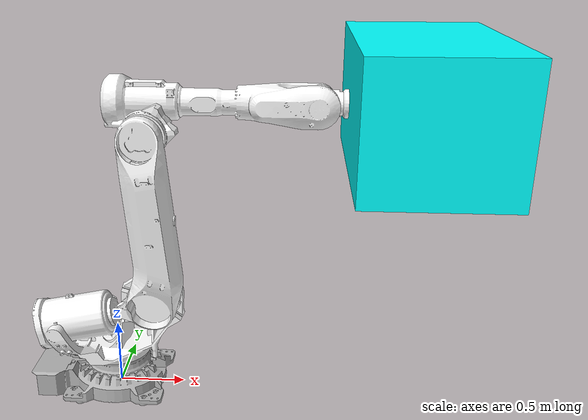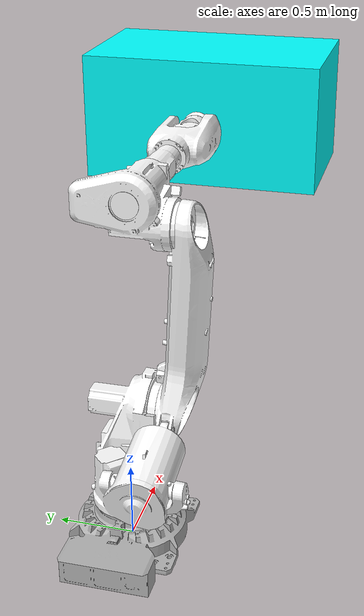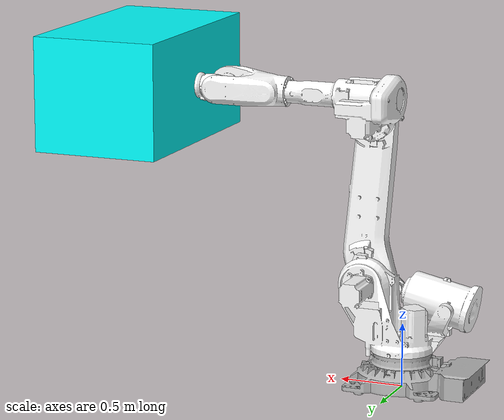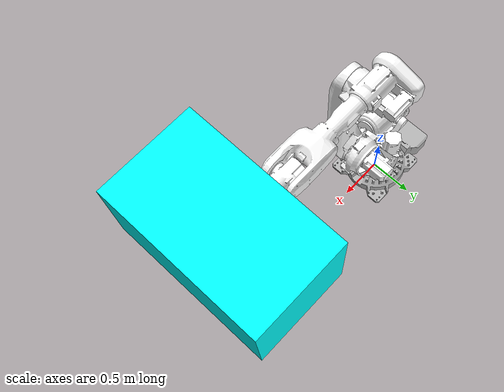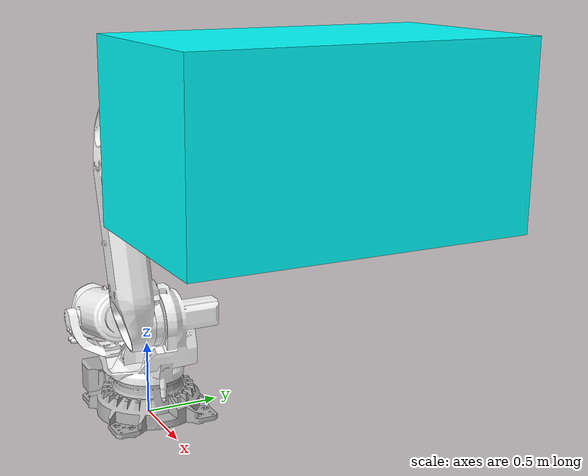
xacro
<robot xmlns:xacro="http://ros.org/wiki/xacro" name="abb_irb6700_205_280">
  <xacro:include filename="$(find abb_irb6700_205_280_support)/urdf/abb_irb6700_205_280_macro.xacro"/>
  <xacro:abb_irb6700_205_280 prefix=""/>

  <joint name="$joint_ee" type="fixed">
    <origin xyz="0.51 0 0" rpy="0 0 0"/>
    <parent link="link_6"/>
    <child link="gripper"/>
  </joint>

  <link name="gripper">
    <inertial>
      <origin xyz="0 0 0" rpy="0 0 0"/>
      <mass value="1"/>
      <inertia ixx="100"  ixy="0"  ixz="0" iyy="100" iyz="0" izz="100" />q
    </inertial>

    <visual>
      <origin xyz="0 0 0" rpy="0 0 0" />
      <geometry>
        <!--box size=".1 .1 .1" /-->
        <box size="1 1.7 .9" />
      </geometry>
      <material name="Cyan">
        <color rgba="0 1.0 1.0 1"/>
      </material>
    </visual>

    <collision>
      <origin xyz="0 0 0" rpy="0 0 0"/>
      <geometry>
        <box size="1 1.7 .9" />
      </geometry>
    </collision>
 </link>

   <joint name="$joint_deformation" type="fixed">
    <origin xyz="0.78 0.744 0" rpy="0 1.5707 0"/>
    <parent link="link_6"/>
    <child link="grasping"/>
  </joint>

   <link name="grasping"/>
</robot>

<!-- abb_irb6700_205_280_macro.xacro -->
<robot xmlns:xacro="http://ros.org/wiki/xacro">
<xacro:macro name="abb_irb6700_205_280" params="prefix">

<!-- material list -->
<material name="white">
  <color rgba="1 1 1 1"/>
</material>

<material name="grey">
  <color rgba=".7 .7 .7 1"/>
</material>

<material name="yellow">
  <color rgba=".9 .9 0 0.2"/>
</material>

<!--  link list  -->
<link name="${prefix}base_link">
  <visual>
    <origin xyz="0 0 0" rpy="0 0 0"/>
    <geometry>
      <mesh filename="package://abb_irb6700_205_280_support/meshes/irb6700_205_280/ManipulatorJoint0.stl" scale="0.001 0.001 0.001"/>
    </geometry>
    <material name="grey"/>
  </visual>
  <collision>
  <origin xyz="0 0 0" rpy="0 0 0"/>
  <geometry>
  <mesh filename="package://abb_irb6700_205_280_support/meshes/irb6700_205_280/ManipulatorJoint0.stl" scale="0.001 0.001 0.001"/>
  </geometry>
    <material name="grey"/>
  </collision>
</link>

<link name="${prefix}link_1">
  <visual>
  <origin xyz="0 0 -0.78" rpy="0 0 0"/>
  <geometry>
  <mesh filename="package://abb_irb6700_205_280_support/meshes/irb6700_205_280/ManipulatorJoint1.stl" scale="0.001 0.001 0.001"/>
  </geometry>
  <material name="white"/>
  </visual>
  <collision>
  <origin xyz="0 0 -0.78" rpy="0 0 0"/>
  <geometry>
  <mesh filename="package://abb_irb6700_205_280_support/meshes/irb6700_205_280/ManipulatorJoint1.stl" scale="0.001 0.001 0.001"/>
  </geometry>
    <material name="white"/>
  </collision>
</link>

<link name="${prefix}link_2">
  <visual>
  <origin xyz="-0.32 0 -0.78" rpy="0 0 0"/>
  <geometry>
  <mesh filename="package://abb_irb6700_205_280_support/meshes/irb6700_205_280/ManipulatorJoint2.stl" scale="0.001 0.001 0.001"/>
  </geometry>
    <material name="white"/>
  </visual>
  <collision>
  <origin xyz="-0.32 0 -0.78" rpy="0 0 0"/>
  <geometry>
  <mesh filename="package://abb_irb6700_205_280_support/meshes/irb6700_205_280/ManipulatorJoint2.stl" scale="0.001 0.001 0.001"/>
  </geometry>
    <material name="white"/>
  </collision>
</link>

<link name="${prefix}link_3">
  <visual>
  <origin xyz="-0.32 0 -2.06" rpy="0 0 0"/>
  <geometry>
  <mesh filename="package://abb_irb6700_205_280_support/meshes/irb6700_205_280/ManipulatorJoint3.stl" scale="0.001 0.001 0.001"/>
  </geometry>
    <material name="white"/>
  </visual>
  <collision>
  <origin xyz="-0.32 0 -2.06" rpy="0 0 0"/>
  <geometry>
  <mesh filename="package://abb_irb6700_205_280_support/meshes/irb6700_205_280/ManipulatorJoint3.stl" scale="0.001 0.001 0.001"/>
  </geometry>
    <material name="white"/>
  </collision>
</link>

<link name="${prefix}link_4">
  <visual>
  <origin xyz="-0.32 0 -2.26" rpy="0 0 0"/>
  <geometry>
  <mesh filename="package://abb_irb6700_205_280_support/meshes/irb6700_205_280/ManipulatorJoint4.stl" scale="0.001 0.001 0.001"/>
  </geometry>
    <material name="white"/>
  </visual>
  <collision>
  <origin xyz="-0.32 0 -2.26" rpy="0 0 0"/>
  <geometry>
  <mesh filename="package://abb_irb6700_205_280_support/meshes/irb6700_205_280/ManipulatorJoint4.stl" scale="0.001 0.001 0.001"/>
  </geometry>
    <material name="white"/>
  </collision>
</link>

<link name="${prefix}link_5">
  <visual>
  <origin xyz="-1.5025 0 -2.26" rpy="0 0 0"/>
  <geometry>
  <mesh filename="package://abb_irb6700_205_280_support/meshes/irb6700_205_280/ManipulatorJoint5.stl" scale="0.001 0.001 0.001"/>
  </geometry>
    <material name="white"/>
  </visual>
  <collision>
  <origin xyz="-1.5025 0 -2.26" rpy="0 0 0"/>
  <geometry>
  <mesh filename="package://abb_irb6700_205_280_support/meshes/irb6700_205_280/ManipulatorJoint5.stl" scale="0.001 0.001 0.001"/>
  </geometry>
    <material name="white"/>
  </collision>
</link>

<link name="${prefix}link_6">
  <visual>
  <origin xyz="-1.7025 0 -2.26" rpy="0 0 0"/>
  <geometry>
  <mesh filename="package://abb_irb6700_205_280_support/meshes/irb6700_205_280/ManipulatorJoint6.stl" scale="0.001 0.001 0.001"/>
  </geometry>
    <material name="white"/>
  </visual>
  <collision>
  <origin xyz="-1.7025 0 -2.26" rpy="0 0 0"/>
  <geometry>
  <mesh filename="package://abb_irb6700_205_280_support/meshes/irb6700_205_280/ManipulatorJoint6.stl" scale="0.001 0.001 0.001"/>
  </geometry>
    <material name="white"/>
  </collision>
</link>

<!--  joint list -->

<joint name="${prefix}joint_1" type="revolute">
  <origin xyz="0 0 0.78" rpy="0 0 0"/>
  <parent link="${prefix}base_link"/>
  <child link="${prefix}link_1"/>
  <axis xyz="0 0 1"/>
  <limit lower="-${radians(170)}" upper="${radians(170)}" effort="0" velocity="${radians(110)}"/>
</joint>

<joint name="${prefix}joint_2" type="revolute">
  <origin xyz="0.32 0 0" rpy="0 0 0"/>
  <parent link="${prefix}link_1"/>
  <child link="${prefix}link_2"/>
  <axis xyz="0 1 0"/>
  <limit lower="-${radians(65)}" upper="${radians(85)}" effort="0" velocity="${radians(110)}"/>
</joint>

<joint name="${prefix}joint_3" type="revolute">
  <origin xyz="0 0 1.280" rpy="0 0 0"/>
  <parent link="${prefix}link_2"/>
  <child link="${prefix}link_3"/>
  <axis xyz="0 1 0"/>
  <limit lower="-${radians(180)}" upper="${radians(70)}" effort="0" velocity="${radians(110)}"/>
</joint>

<joint name="${prefix}joint_4" type="revolute">
  <origin xyz="0 0 0.2" rpy="0 0 0"/>
  <parent link="${prefix}link_3"/>
  <child link="${prefix}link_4"/>
  <axis xyz="1 0 0"/>
  <limit lower="-${radians(300)}" upper="${radians(300)}" effort="0" velocity="${radians(190)}"/>
</joint>

<joint name="${prefix}joint_5" type="revolute">
  <origin xyz="1.1825 0 0" rpy="0 0 0"/>
  <parent link="${prefix}link_4"/>
  <child link="${prefix}link_5"/>
  <axis xyz="0 1 0"/>
  <limit lower="-${radians(130)}" upper="${radians(130)}" effort="0" velocity="${radians(150)}"/>
</joint>

<joint name="${prefix}joint_6" type="revolute">
  <origin xyz="0.2 0 0" rpy="0 0 0"/>
  <parent link="${prefix}link_5"/>
  <child link="${prefix}link_6"/>
  <axis xyz="1 0 0"/>
  <limit lower="-${radians(360)}" upper="${radians(360)}" effort="0" velocity="${radians(210)}"/>
</joint>

<!-- Standardised -->
<!-- ROS-Industrial 'base' frame: base_link to ABB World Coordinates transform -->
<link name="base"/>
<joint name="${prefix}base_link-base" type="fixed">
  <origin xyz="0 0 0" rpy="0 0 0"/>
  <parent link="base"/>
  <child link="${prefix}base_link"/>
</joint>

<!-- TODO review-->
<!-- ROS-Industrial 'flange' frame: attachment point for EEF models -->
<link name="${prefix}flange"/>
<joint type="fixed" name="${prefix}joint_6-flange">
  <origin xyz="0 0 0" rpy="0 0 0"/>
  <parent link="${prefix}link_6"/>
  <child link="${prefix}flange"/>
</joint>

<!-- TODO review-->
<!-- ROS-Industrial 'tool0' frame: all-zeros tool frame -->
<link name="${prefix}tool0" />
<joint name="${prefix}link_6-tool0" type="fixed">
  <origin xyz="0 0 0" rpy="0 ${radians(90)} 0" />
  <parent link="${prefix}flange" />
  <child link="${prefix}tool0" />
</joint>

<!-- ROS-Industrial 'tool_camera' frame: -->
<!-- this was defined for the development phase with an unideal camera mount -->
<!-- Define the new tool_camera frame as it will mounted in the ProPoint gripper -->
<!-- Precision is not needed at all, it is just for the extrinsic calibration phase -->
<!-- to make the camera always look at the calibration board. -->
<link name="${prefix}tool_camera" />
<joint name="${prefix}tool0-tool_camera" type="fixed">
  <origin xyz="${-0.089*cos(15.18*pi/180)} ${-0.089*sin(15.18*pi/180)} 0.11"
        rpy="0 0 ${15.18*pi/180}"/>
  <parent link="${prefix}tool0" />
  <child link="${prefix}tool_camera" />
</joint>

</xacro:macro>
</robot>
